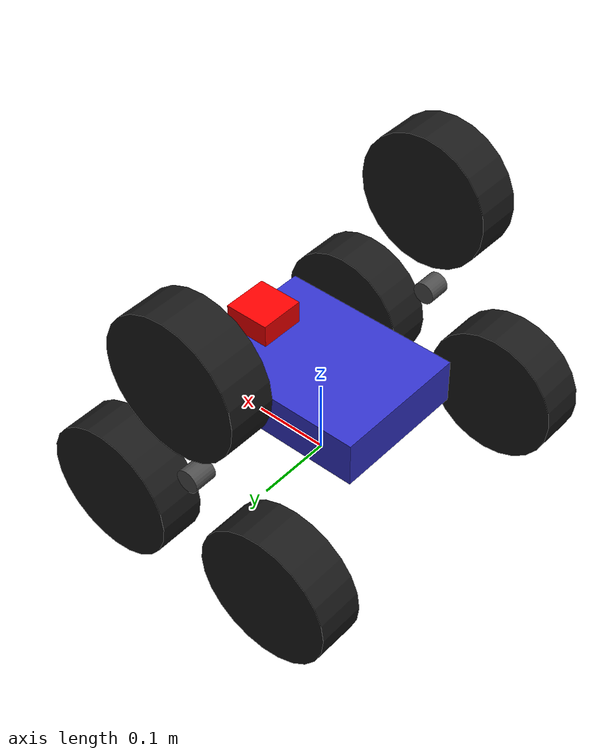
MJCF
<?xml version="1.0"?>
<mujoco model="tristar_large_robot">
  <compiler angle="degree" coordinate="local" inertiafromgeom="true"/>
  <option timestep="0.002" gravity="0 0 -9.81"/>

  <default>
    <joint armature="0.015" damping="0.15"/>
    <geom friction="1.0" solimp="0.9 0.95 0.001 0.5 2" solref="0.02 1"/>
    <motor ctrllimited="true" ctrlrange="-1.0 1.0"/>
  </default>

  <worldbody>
    <!-- Main Body (Base) - 1.5倍に拡大 -->
    <body name="base_link" pos="0 0 0.12">
      <freejoint/>
      <geom type="box" size="0.12 0.09 0.03" rgba="0.2 0.2 0.8 1" mass="5.0"/>

      <!-- Visual Marker for Front -->
      <geom type="box" pos="0.09 0 0.03" size="0.03 0.03 0.03" rgba="1 0 0 1" mass="0.1"/>

      <!-- Left Tri-star Wheel Assembly -->
      <body name="left_tristar" pos="0 0.21 0" euler="0 0 0">
        <!-- Tri-star frame (triangle) -->
        <geom type="cylinder" size="0.015 0.015" rgba="0.3 0.3 0.3 1" mass="1.5" zaxis="0 1 0"/>
        <joint name="left_tristar_joint" type="hinge" axis="0 1 0" damping="15.0" armature="0.015"/>

        <!-- Wheel 1 (bottom-front) - フレーム半径0.15mを実現 -->
        <body name="left_wheel_1" pos="0.12 0 -0.09" zaxis="0 1 0">
          <joint name="left_wheel_1_joint" type="hinge" axis="0 0 1" damping="1.0" armature="0.008"/>
          <geom type="cylinder" size="0.09 0.03" rgba="0.1 0.1 0.1 1" mass="1.0" friction="2.0 0.005 0.0001"/>
        </body>

        <!-- Wheel 2 (bottom-back) -->
        <body name="left_wheel_2" pos="-0.12 0 -0.09" zaxis="0 1 0">
          <joint name="left_wheel_2_joint" type="hinge" axis="0 0 1" damping="1.0" armature="0.008"/>
          <geom type="cylinder" size="0.09 0.03" rgba="0.1 0.1 0.1 1" mass="0.7" friction="2.0 0.005 0.0001"/>
        </body>

        <!-- Wheel 3 (top) -->
        <body name="left_wheel_3" pos="0 0 0.15" zaxis="0 1 0">
          <joint name="left_wheel_3_joint" type="hinge" axis="0 0 1" damping="1.0" armature="0.008"/>
          <geom type="cylinder" size="0.09 0.03" rgba="0.1 0.1 0.1 1" mass="0.7" friction="2.0 0.005 0.0001"/>
        </body>
      </body>

      <!-- Right Tri-star Wheel Assembly (mirror) -->
      <body name="right_tristar" pos="0 -0.21 0" euler="0 0 0">
        <geom type="cylinder" size="0.015 0.015" rgba="0.3 0.3 0.3 1" mass="1.5" zaxis="0 1 0"/>
        <joint name="right_tristar_joint" type="hinge" axis="0 1 0" damping="15.0" armature="0.015"/>

        <body name="right_wheel_1" pos="0.12 0 -0.09" zaxis="0 1 0">
          <joint name="right_wheel_1_joint" type="hinge" axis="0 0 1" damping="1.0" armature="0.008"/>
          <geom type="cylinder" size="0.09 0.03" rgba="0.1 0.1 0.1 1" mass="0.7" friction="2.0 0.005 0.0001"/>
        </body>

        <body name="right_wheel_2" pos="-0.12 0 -0.09" zaxis="0 1 0">
          <joint name="right_wheel_2_joint" type="hinge" axis="0 0 1" damping="1.0" armature="0.008"/>
          <geom type="cylinder" size="0.09 0.03" rgba="0.1 0.1 0.1 1" mass="0.7" friction="2.0 0.005 0.0001"/>
        </body>

        <body name="right_wheel_3" pos="0 0 0.15" zaxis="0 1 0">
          <joint name="right_wheel_3_joint" type="hinge" axis="0 0 1" damping="1.0" armature="0.008"/>
          <geom type="cylinder" size="0.09 0.03" rgba="0.1 0.1 0.1 1" mass="0.7" friction="2.0 0.005 0.0001"/>
        </body>
      </body>
    </body>
  </worldbody>

  <actuator>
    <!-- Frame motors (High torque for climbing) - 大型化に伴いギア比増加 -->
    <motor name="left_frame_motor" joint="left_tristar_joint" gear="150"/>
    <motor name="right_frame_motor" joint="right_tristar_joint" gear="150"/>

    <!-- Wheel motors (Speed for driving) -->
    <motor name="left_wheel_1_motor" joint="left_wheel_1_joint" gear="75"/>
    <motor name="left_wheel_2_motor" joint="left_wheel_2_joint" gear="75"/>
    <motor name="left_wheel_3_motor" joint="left_wheel_3_joint" gear="75"/>

    <motor name="right_wheel_1_motor" joint="right_wheel_1_joint" gear="75"/>
    <motor name="right_wheel_2_motor" joint="right_wheel_2_joint" gear="75"/>
    <motor name="right_wheel_3_motor" joint="right_wheel_3_joint" gear="75"/>
  </actuator>
</mujoco>
